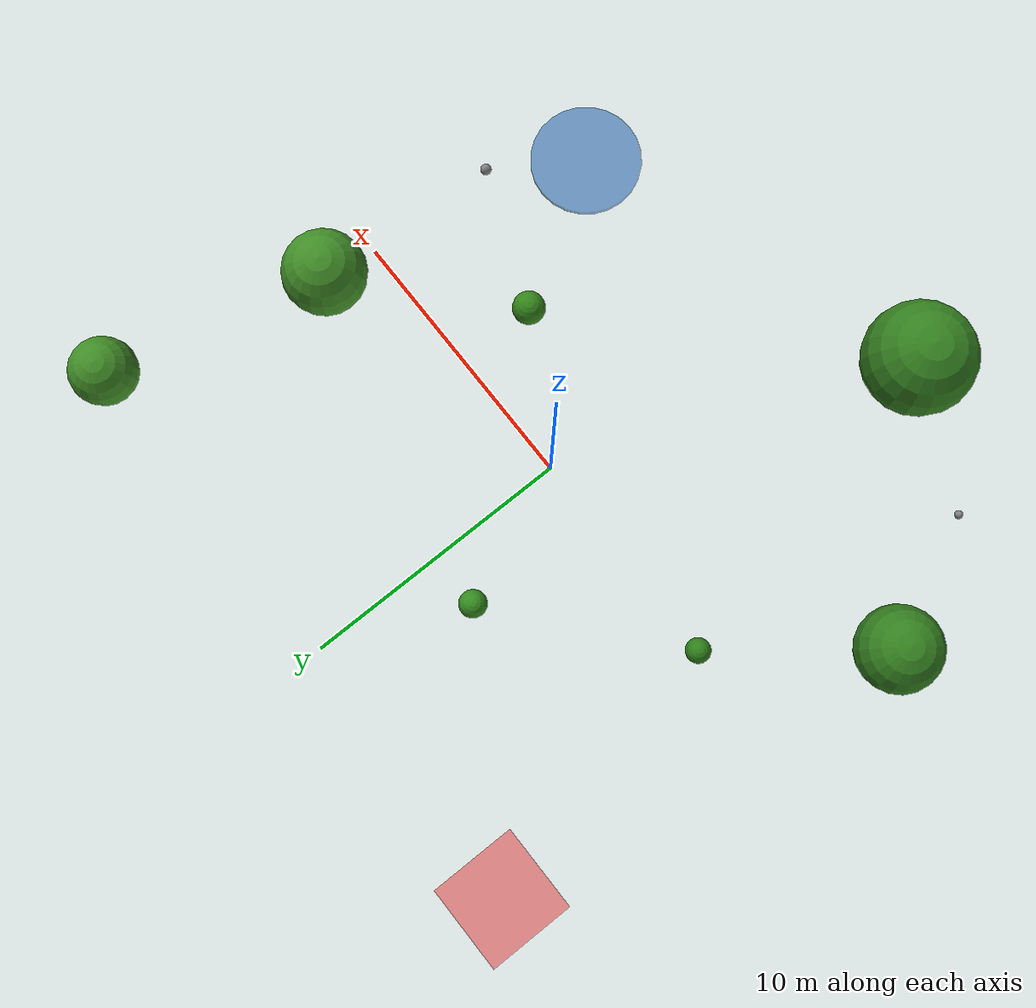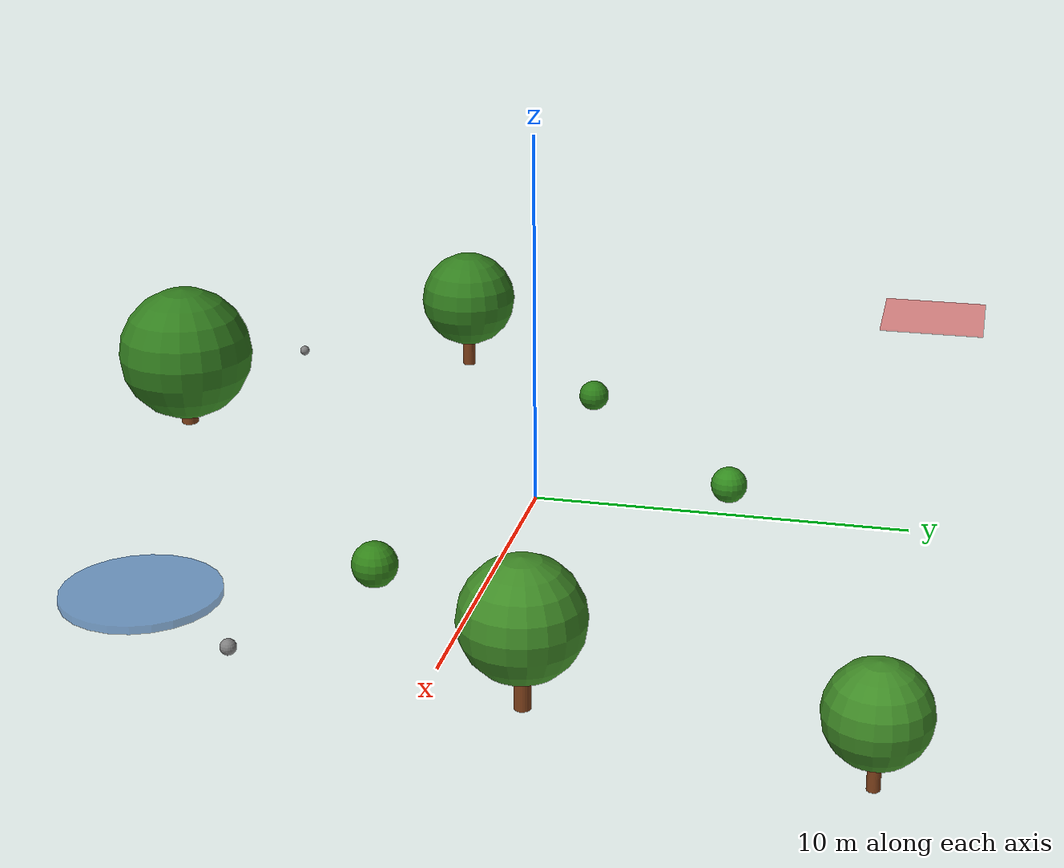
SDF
<sdf version="1.8">
 <world name="hill_terrain_30x30">
  <physics name="fast_physics" type="ignored">
   <max_step_size>0.005</max_step_size>
   <real_time_factor>1.0</real_time_factor>
  </physics>
  <plugin filename="libignition-gazebo-physics-system.so" name="ignition::gazebo::systems::Physics"/>
  <plugin filename="libignition-gazebo-user-commands-system.so" name="ignition::gazebo::systems::UserCommands"/>
  <plugin filename="libignition-gazebo-scene-broadcaster-system.so" name="ignition::gazebo::systems::SceneBroadcaster"/>
  <plugin filename="libignition-gazebo-imu-system.so" name="ignition::gazebo::systems::Imu"/>
  <plugin filename="libignition-gazebo-navsat-system.so" name="ignition::gazebo::systems::NavSat"/>
  <plugin filename="libignition-gazebo-sensors-system.so" name="ignition::gazebo::systems::Sensors">
   <render_engine>ogre</render_engine>
  </plugin>
  <light type="directional" name="sun">
   <pose>0 0 50 0 0 0</pose>
   <diffuse>0.9 0.9 0.85 1</diffuse>
   <specular>0.3 0.3 0.3 1</specular>
   <attenuation>
    <range>500</range>
    <constant>0.9</constant>
    <linear>0.01</linear>
    <quadratic>0.001</quadratic>
   </attenuation>
   <direction>-0.3 0.1 -0.95</direction>
  </light>
  <scene><ambient>0.4 0.4 0.5 1</ambient><background>0.8 0.85 0.8 1</background><shadows>true</shadows></scene>
  <spherical_coordinates>
   <latitude_deg>22.5431</latitude_deg>
   <longitude_deg>114.0579</longitude_deg>
   <elevation>0</elevation>
   <heading_deg>0</heading_deg>
  </spherical_coordinates>
  <model name="pond">
   <static>true</static>
   <pose>8 -8 0.1 0 0 0</pose>
   <link name="link">
    <collision name="collision">
     <geometry><cylinder><radius>2.0</radius><length>0.2</length></cylinder></geometry>
    </collision>
    <visual name="visual">
     <geometry><cylinder><radius>2.0</radius><length>0.2</length></cylinder></geometry>
     <material><ambient>0.1 0.3 0.6 0.6</ambient><diffuse>0.15 0.4 0.7 0.6</diffuse></material>
    </visual>
   </link>
  </model>
  <model name="steep_zone_marker">
   <static>true</static>
   <pose>-10 10 2.6 0 0 0</pose>
   <link name="link">
    <visual name="visual">
     <geometry><box><size>3.0 3.0 0.05</size></box></geometry>
     <material><ambient>0.8 0.1 0.1 0.5</ambient><diffuse>0.9 0.15 0.15 0.5</diffuse></material>
    </visual>
   </link>
  </model>
  <model name="bush_1">
   <static>true</static>
   <pose>-2 5 0 0 0 0</pose>
   <link name="link">
    <collision name="collision">
     <geometry><cylinder><radius>0.4</radius><length>0.5</length></cylinder></geometry>
    </collision>
    <visual name="visual">
     <geometry><sphere><radius>0.5</radius></sphere></geometry>
     <material><ambient>0.15 0.5 0.1 1</ambient><diffuse>0.2 0.55 0.12 1</diffuse></material>
    </visual>
   </link>
  </model>
  <model name="bush_2">
   <static>true</static>
   <pose>5 -3 0 0 0 0</pose>
   <link name="link">
    <collision name="collision">
     <geometry><cylinder><radius>0.5</radius><length>0.6</length></cylinder></geometry>
    </collision>
    <visual name="visual">
     <geometry><sphere><radius>0.6</radius></sphere></geometry>
     <material><ambient>0.15 0.48 0.08 1</ambient><diffuse>0.2 0.52 0.1 1</diffuse></material>
    </visual>
   </link>
  </model>
  <model name="bush_3">
   <static>true</static>
   <pose>-8 0 0 0 0 0</pose>
   <link name="link">
    <collision name="collision">
     <geometry><cylinder><radius>0.35</radius><length>0.4</length></cylinder></geometry>
    </collision>
    <visual name="visual">
     <geometry><sphere><radius>0.45</radius></sphere></geometry>
     <material><ambient>0.12 0.45 0.08 1</ambient><diffuse>0.18 0.5 0.1 1</diffuse></material>
    </visual>
   </link>
  </model>
  <model name="hill_tree_1">
   <static>true</static>
   <pose>10 2 0 0 0 0</pose>
   <link name="trunk">
    <collision name="collision">
     <geometry><cylinder><radius>0.2</radius><length>1.5</length></cylinder></geometry>
    </collision>
    <visual name="trunk_vis">
     <geometry><cylinder><radius>0.2</radius><length>1.5</length></cylinder></geometry>
     <material><ambient>0.4 0.2 0.1 1</ambient><diffuse>0.5 0.25 0.1 1</diffuse></material>
    </visual>
    <visual name="canopy_vis">
     <pose>0 0 1.5 0 0 0</pose>
     <geometry><sphere><radius>1.5</radius></sphere></geometry>
     <material><ambient>0.2 0.5 0.1 1</ambient><diffuse>0.25 0.55 0.15 1</diffuse></material>
    </visual>
   </link>
  </model>
  <model name="hill_tree_2">
   <static>true</static>
   <pose>-5 -12 0 0 0 0</pose>
   <link name="trunk">
    <collision name="collision">
     <geometry><cylinder><radius>0.25</radius><length>1.5</length></cylinder></geometry>
    </collision>
    <visual name="trunk_vis">
     <geometry><cylinder><radius>0.25</radius><length>1.5</length></cylinder></geometry>
     <material><ambient>0.4 0.2 0.1 1</ambient><diffuse>0.5 0.25 0.1 1</diffuse></material>
    </visual>
    <visual name="canopy_vis">
     <pose>0 0 1.5 0 0 0</pose>
     <geometry><sphere><radius>2.0</radius></sphere></geometry>
     <material><ambient>0.15 0.45 0.1 1</ambient><diffuse>0.2 0.5 0.12 1</diffuse></material>
    </visual>
   </link>
  </model>
  <model name="hill_tree_3">
   <static>true</static>
   <pose>12 10 0 0 0 0</pose>
   <link name="trunk">
    <collision name="collision">
     <geometry><cylinder><radius>0.15</radius><length>1.2</length></cylinder></geometry>
    </collision>
    <visual name="trunk_vis">
     <geometry><cylinder><radius>0.15</radius><length>1.2</length></cylinder></geometry>
     <material><ambient>0.4 0.2 0.1 1</ambient><diffuse>0.5 0.25 0.1 1</diffuse></material>
    </visual>
    <visual name="canopy_vis">
     <pose>0 0 1.2 0 0 0</pose>
     <geometry><sphere><radius>1.2</radius></sphere></geometry>
     <material><ambient>0.2 0.5 0.1 1</ambient><diffuse>0.25 0.55 0.15 1</diffuse></material>
    </visual>
   </link>
  </model>
  <model name="hill_tree_4">
   <static>true</static>
   <pose>-12 -5 0 0 0 0</pose>
   <link name="trunk">
    <collision name="collision">
     <geometry><cylinder><radius>0.2</radius><length>1.5</length></cylinder></geometry>
    </collision>
    <visual name="trunk_vis">
     <geometry><cylinder><radius>0.2</radius><length>1.5</length></cylinder></geometry>
     <material><ambient>0.4 0.2 0.1 1</ambient><diffuse>0.5 0.25 0.1 1</diffuse></material>
    </visual>
    <visual name="canopy_vis">
     <pose>0 0 1.5 0 0 0</pose>
     <geometry><sphere><radius>1.5</radius></sphere></geometry>
     <material><ambient>0.15 0.45 0.1 1</ambient><diffuse>0.2 0.5 0.12 1</diffuse></material>
    </visual>
   </link>
  </model>
  <model name="hill_rock_1">
   <static>true</static>
   <pose>10 -5 0 0 0 0</pose>
   <link name="link">
    <collision name="collision"><geometry><sphere><radius>0.2</radius></sphere></geometry></collision>
    <visual name="visual">
     <geometry><sphere><radius>0.2</radius></sphere></geometry>
     <material><ambient>0.4 0.4 0.4 1</ambient><diffuse>0.5 0.5 0.5 1</diffuse></material>
    </visual>
   </link>
  </model>
  <model name="hill_rock_2">
   <static>true</static>
   <pose>-10 -10 0 0 0 0</pose>
   <link name="link">
    <collision name="collision"><geometry><sphere><radius>0.15</radius></sphere></geometry></collision>
    <visual name="visual">
     <geometry><sphere><radius>0.15</radius></sphere></geometry>
     <material><ambient>0.4 0.4 0.4 1</ambient><diffuse>0.5 0.5 0.5 1</diffuse></material>
    </visual>
   </link>
  </model>
 </world>
</sdf>
